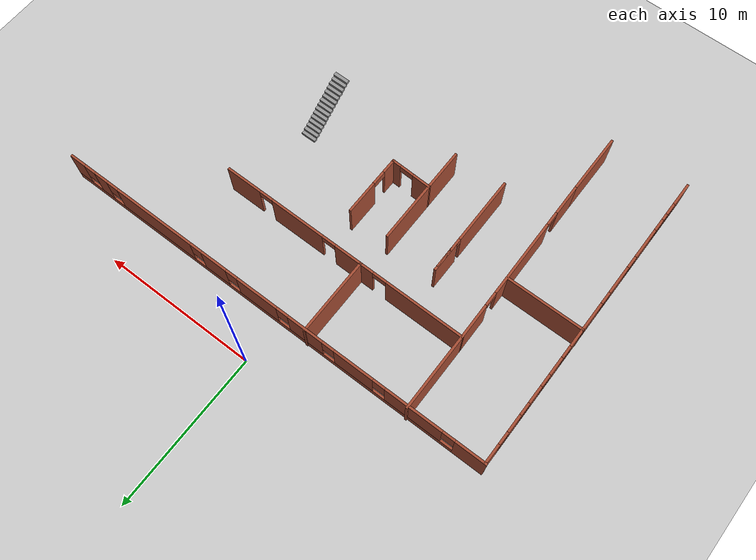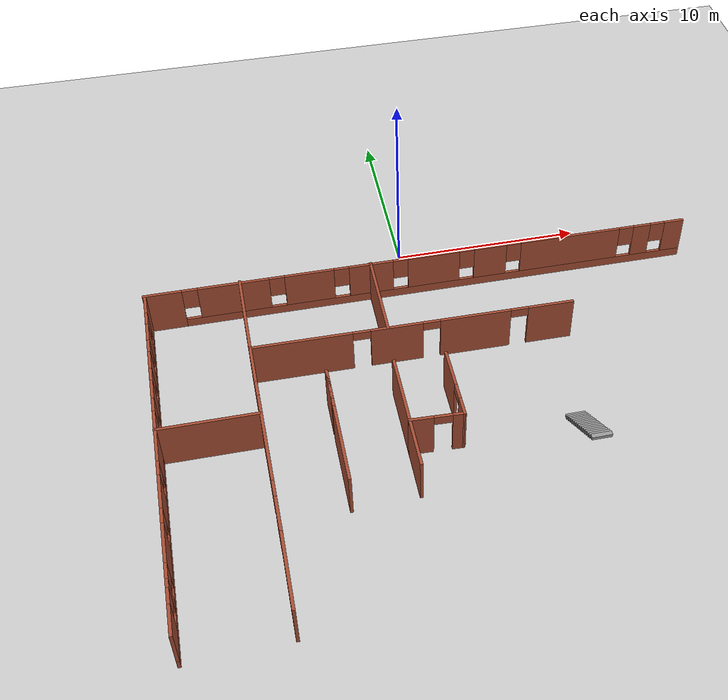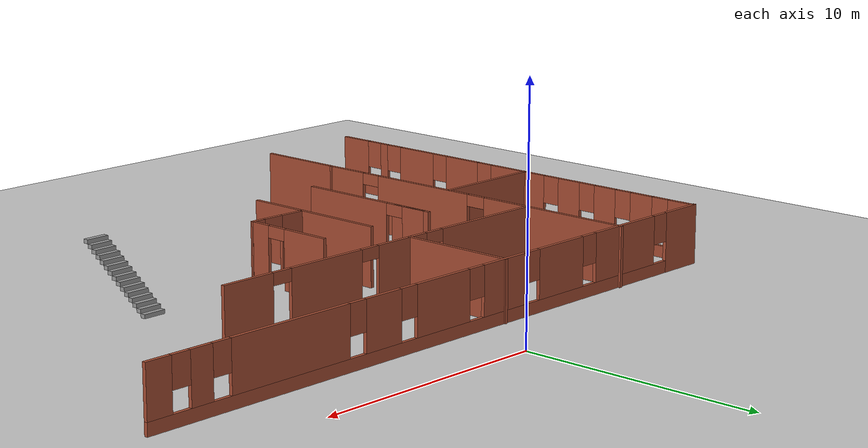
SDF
<sdf version="1.7">
 <world name="default">
  <model name="ground_plane">
   <static>1</static>
   <link name="link">
    <collision name="collision">
     <geometry><plane><normal>0 0 1</normal><size>100 100</size></plane></geometry>
     <surface>
      <contact><collide_bitmask>65535</collide_bitmask></contact>
      <friction><ode><mu>100</mu><mu2>50</mu2></ode></friction>
     </surface>
    </collision>
    <visual name="visual">
     <cast_shadows>0</cast_shadows>
     <geometry><plane><normal>0 0 1</normal><size>100 100</size></plane></geometry>
     <material>
      <script><uri>file://media/materials/scripts/gazebo.material</uri><name>Gazebo/Grey</name></script>
     </material>
    </visual>
   </link>
  </model>
  <model name="dh-hdh">
   <pose>0.666955 -11.441 0 0 -0 0</pose>
   <link name="Stairs_3">
    <visual name="Stairs_3_Visual_0">
     <pose>5.54539 -1.78177 0.083333 0 -0 0</pose>
     <geometry><box><size>1 0.233333 0.166667</size></box></geometry>
     <material>
      <script><uri>file://media/materials/scripts/gazebo.material</uri><name>Gazebo/Grey</name></script>
      <ambient>1 1 1 1</ambient>
     </material>
     <meta><layer>0</layer></meta>
    </visual>
    <collision name="Stairs_3_Collision_0">
     <geometry><box><size>1 0.233333 0.166667</size></box></geometry>
     <pose>5.54539 -1.78177 0.083333 0 -0 0</pose>
    </collision>
    <visual name="Stairs_3_Visual_1">
     <pose>5.54539 -2.0151 0.25 0 -0 0</pose>
     <geometry><box><size>1 0.233333 0.166667</size></box></geometry>
     <material>
      <script><uri>file://media/materials/scripts/gazebo.material</uri><name>Gazebo/Grey</name></script>
      <ambient>1 1 1 1</ambient>
     </material>
     <meta><layer>0</layer></meta>
    </visual>
    <collision name="Stairs_3_Collision_1">
     <geometry><box><size>1 0.233333 0.166667</size></box></geometry>
     <pose>5.54539 -2.0151 0.25 0 -0 0</pose>
    </collision>
    <visual name="Stairs_3_Visual_2">
     <pose>5.54539 -2.24844 0.416667 0 -0 0</pose>
     <geometry><box><size>1 0.233333 0.166667</size></box></geometry>
     <material>
      <script><uri>file://media/materials/scripts/gazebo.material</uri><name>Gazebo/Grey</name></script>
      <ambient>1 1 1 1</ambient>
     </material>
     <meta><layer>0</layer></meta>
    </visual>
    <collision name="Stairs_3_Collision_2">
     <geometry><box><size>1 0.233333 0.166667</size></box></geometry>
     <pose>5.54539 -2.24844 0.416667 0 -0 0</pose>
    </collision>
    <visual name="Stairs_3_Visual_3">
     <pose>5.54539 -2.48177 0.583333 0 -0 0</pose>
     <geometry><box><size>1 0.233333 0.166667</size></box></geometry>
     <material>
      <script><uri>file://media/materials/scripts/gazebo.material</uri><name>Gazebo/Grey</name></script>
      <ambient>1 1 1 1</ambient>
     </material>
     <meta><layer>0</layer></meta>
    </visual>
    <collision name="Stairs_3_Collision_3">
     <geometry><box><size>1 0.233333 0.166667</size></box></geometry>
     <pose>5.54539 -2.48177 0.583333 0 -0 0</pose>
    </collision>
    <visual name="Stairs_3_Visual_4">
     <pose>5.54539 -2.7151 0.75 0 -0 0</pose>
     <geometry><box><size>1 0.233333 0.166667</size></box></geometry>
     <material>
      <script><uri>file://media/materials/scripts/gazebo.material</uri><name>Gazebo/Grey</name></script>
      <ambient>1 1 1 1</ambient>
     </material>
     <meta><layer>0</layer></meta>
    </visual>
    <collision name="Stairs_3_Collision_4">
     <geometry><box><size>1 0.233333 0.166667</size></box></geometry>
     <pose>5.54539 -2.7151 0.75 0 -0 0</pose>
    </collision>
    <visual name="Stairs_3_Visual_5">
     <pose>5.54539 -2.94843 0.916667 0 -0 0</pose>
     <geometry><box><size>1 0.233333 0.166667</size></box></geometry>
     <material>
      <script><uri>file://media/materials/scripts/gazebo.material</uri><name>Gazebo/Grey</name></script>
      <ambient>1 1 1 1</ambient>
     </material>
     <meta><layer>0</layer></meta>
    </visual>
    <collision name="Stairs_3_Collision_5">
     <geometry><box><size>1 0.233333 0.166667</size></box></geometry>
     <pose>5.54539 -2.94843 0.916667 0 -0 0</pose>
    </collision>
    <visual name="Stairs_3_Visual_6">
     <pose>5.54539 -3.18177 1.08333 0 -0 0</pose>
     <geometry><box><size>1 0.233333 0.166667</size></box></geometry>
     <material>
      <script><uri>file://media/materials/scripts/gazebo.material</uri><name>Gazebo/Grey</name></script>
      <ambient>1 1 1 1</ambient>
     </material>
     <meta><layer>0</layer></meta>
    </visual>
    <collision name="Stairs_3_Collision_6">
     <geometry><box><size>1 0.233333 0.166667</size></box></geometry>
     <pose>5.54539 -3.18177 1.08333 0 -0 0</pose>
    </collision>
    <visual name="Stairs_3_Visual_7">
     <pose>5.54539 -3.4151 1.25 0 -0 0</pose>
     <geometry><box><size>1 0.233333 0.166667</size></box></geometry>
     <material>
      <script><uri>file://media/materials/scripts/gazebo.material</uri><name>Gazebo/Grey</name></script>
      <ambient>1 1 1 1</ambient>
     </material>
     <meta><layer>0</layer></meta>
    </visual>
    <collision name="Stairs_3_Collision_7">
     <geometry><box><size>1 0.233333 0.166667</size></box></geometry>
     <pose>5.54539 -3.4151 1.25 0 -0 0</pose>
    </collision>
    <visual name="Stairs_3_Visual_8">
     <pose>5.54539 -3.64844 1.41667 0 -0 0</pose>
     <geometry><box><size>1 0.233333 0.166667</size></box></geometry>
     <material>
      <script><uri>file://media/materials/scripts/gazebo.material</uri><name>Gazebo/Grey</name></script>
      <ambient>1 1 1 1</ambient>
     </material>
     <meta><layer>0</layer></meta>
    </visual>
    <collision name="Stairs_3_Collision_8">
     <geometry><box><size>1 0.233333 0.166667</size></box></geometry>
     <pose>5.54539 -3.64844 1.41667 0 -0 0</pose>
    </collision>
    <visual name="Stairs_3_Visual_9">
     <pose>5.54539 -3.88177 1.58333 0 -0 0</pose>
     <geometry><box><size>1 0.233333 0.166667</size></box></geometry>
     <material>
      <script><uri>file://media/materials/scripts/gazebo.material</uri><name>Gazebo/Grey</name></script>
      <ambient>1 1 1 1</ambient>
     </material>
     <meta><layer>0</layer></meta>
    </visual>
    <collision name="Stairs_3_Collision_9">
     <geometry><box><size>1 0.233333 0.166667</size></box></geometry>
     <pose>5.54539 -3.88177 1.58333 0 -0 0</pose>
    </collision>
    <visual name="Stairs_3_Visual_10">
     <pose>5.54539 -4.1151 1.75 0 -0 0</pose>
     <geometry><box><size>1 0.233333 0.166667</size></box></geometry>
     <material>
      <script><uri>file://media/materials/scripts/gazebo.material</uri><name>Gazebo/Grey</name></script>
      <ambient>1 1 1 1</ambient>
     </material>
     <meta><layer>0</layer></meta>
    </visual>
    <collision name="Stairs_3_Collision_10">
     <geometry><box><size>1 0.233333 0.166667</size></box></geometry>
     <pose>5.54539 -4.1151 1.75 0 -0 0</pose>
    </collision>
    <visual name="Stairs_3_Visual_11">
     <pose>5.54539 -4.34844 1.91667 0 -0 0</pose>
     <geometry><box><size>1 0.233333 0.166667</size></box></geometry>
     <material>
      <script><uri>file://media/materials/scripts/gazebo.material</uri><name>Gazebo/Grey</name></script>
      <ambient>1 1 1 1</ambient>
     </material>
     <meta><layer>0</layer></meta>
    </visual>
    <collision name="Stairs_3_Collision_11">
     <geometry><box><size>1 0.233333 0.166667</size></box></geometry>
     <pose>5.54539 -4.34844 1.91667 0 -0 0</pose>
    </collision>
    <visual name="Stairs_3_Visual_12">
     <pose>5.54539 -4.58177 2.08333 0 -0 0</pose>
     <geometry><box><size>1 0.233333 0.166667</size></box></geometry>
     <material>
      <script><uri>file://media/materials/scripts/gazebo.material</uri><name>Gazebo/Grey</name></script>
      <ambient>1 1 1 1</ambient>
     </material>
     <meta><layer>0</layer></meta>
    </visual>
    <collision name="Stairs_3_Collision_12">
     <geometry><box><size>1 0.233333 0.166667</size></box></geometry>
     <pose>5.54539 -4.58177 2.08333 0 -0 0</pose>
    </collision>
    <visual name="Stairs_3_Visual_13">
     <pose>5.54539 -4.8151 2.25 0 -0 0</pose>
     <geometry><box><size>1 0.233333 0.166667</size></box></geometry>
     <material>
      <script><uri>file://media/materials/scripts/gazebo.material</uri><name>Gazebo/Grey</name></script>
      <ambient>1 1 1 1</ambient>
     </material>
     <meta><layer>0</layer></meta>
    </visual>
    <collision name="Stairs_3_Collision_13">
     <geometry><box><size>1 0.233333 0.166667</size></box></geometry>
     <pose>5.54539 -4.8151 2.25 0 -0 0</pose>
    </collision>
    <visual name="Stairs_3_Visual_14">
     <pose>5.54539 -5.04843 2.41667 0 -0 0</pose>
     <geometry><box><size>1 0.233333 0.166667</size></box></geometry>
     <material>
      <script><uri>file://media/materials/scripts/gazebo.material</uri><name>Gazebo/Grey</name></script>
      <ambient>1 1 1 1</ambient>
     </material>
     <meta><layer>0</layer></meta>
    </visual>
    <collision name="Stairs_3_Collision_14">
     <geometry><box><size>1 0.233333 0.166667</size></box></geometry>
     <pose>5.54539 -5.04843 2.41667 0 -0 0</pose>
    </collision>
   </link>
   <link name="Wall_26">
    <pose>-14.5246 -1.44103 0 0 -0 -1.5708</pose>
    <visual name="Wall_26_Visual_0">
     <pose>-9.37751 0 1.25 0 -0 0</pose>
     <geometry><box><size>1.24497 0.15 2.5</size></box></geometry>
     <material>
      <script><uri>file://media/materials/scripts/gazebo.material</uri><name>Gazebo/Bricks</name></script>
      <ambient>0.466667 0.462745 0.482353 1</ambient>
     </material>
     <meta><layer>0</layer></meta>
    </visual>
    <collision name="Wall_26_Collision_0">
     <geometry><box><size>1.24497 0.15 2.5</size></box></geometry>
     <pose>-9.37751 0 1.25 0 -0 0</pose>
    </collision>
    <visual name="Wall_26_Visual_1">
     <pose>0.622486 0 0.25 0 -0 0</pose>
     <geometry><box><size>18.755 0.15 0.5</size></box></geometry>
     <material>
      <script><uri>file://media/materials/scripts/gazebo.material</uri><name>Gazebo/Bricks</name></script>
      <ambient>0.466667 0.462745 0.482353 1</ambient>
     </material>
     <meta><layer>0</layer></meta>
    </visual>
    <collision name="Wall_26_Collision_1">
     <geometry><box><size>18.755 0.15 0.5</size></box></geometry>
     <pose>0.622486 0 0.25 0 -0 0</pose>
    </collision>
    <visual name="Wall_26_Visual_2">
     <pose>-7.39044 0 1.5 0 -0 0</pose>
     <geometry><box><size>1.12917 0.15 2</size></box></geometry>
     <material>
      <script><uri>file://media/materials/scripts/gazebo.material</uri><name>Gazebo/Bricks</name></script>
      <ambient>0.466667 0.462745 0.482353 1</ambient>
     </material>
     <meta><layer>0</layer></meta>
    </visual>
    <collision name="Wall_26_Collision_2">
     <geometry><box><size>1.12917 0.15 2</size></box></geometry>
     <pose>-7.39044 0 1.5 0 -0 0</pose>
    </collision>
    <visual name="Wall_26_Visual_3">
     <pose>-5.46128 0 1.5 0 -0 0</pose>
     <geometry><box><size>1.12917 0.15 2</size></box></geometry>
     <material>
      <script><uri>file://media/materials/scripts/gazebo.material</uri><name>Gazebo/Bricks</name></script>
      <ambient>0.466667 0.462745 0.482353 1</ambient>
     </material>
     <meta><layer>0</layer></meta>
    </visual>
    <collision name="Wall_26_Collision_3">
     <geometry><box><size>1.12917 0.15 2</size></box></geometry>
     <pose>-5.46128 0 1.5 0 -0 0</pose>
    </collision>
    <visual name="Wall_26_Visual_4">
     <pose>-3.51159 0 1.5 0 -0 0</pose>
     <geometry><box><size>1.17021 0.15 2</size></box></geometry>
     <material>
      <script><uri>file://media/materials/scripts/gazebo.material</uri><name>Gazebo/Bricks</name></script>
      <ambient>0.466667 0.462745 0.482353 1</ambient>
     </material>
     <meta><layer>0</layer></meta>
    </visual>
    <collision name="Wall_26_Collision_4">
     <geometry><box><size>1.17021 0.15 2</size></box></geometry>
     <pose>-3.51159 0 1.5 0 -0 0</pose>
    </collision>
    <visual name="Wall_26_Visual_5">
     <pose>-0.603063 0 1.5 0 -0 0</pose>
     <geometry><box><size>3.04683 0.15 2</size></box></geometry>
     <material>
      <script><uri>file://media/materials/scripts/gazebo.material</uri><name>Gazebo/Bricks</name></script>
      <ambient>0.466667 0.462745 0.482353 1</ambient>
     </material>
     <meta><layer>0</layer></meta>
    </visual>
    <collision name="Wall_26_Collision_5">
     <geometry><box><size>3.04683 0.15 2</size></box></geometry>
     <pose>-0.603063 0 1.5 0 -0 0</pose>
    </collision>
    <visual name="Wall_26_Visual_6">
     <pose>2.64954 0 1.5 0 -0 0</pose>
     <geometry><box><size>1.85838 0.15 2</size></box></geometry>
     <material>
      <script><uri>file://media/materials/scripts/gazebo.material</uri><name>Gazebo/Bricks</name></script>
      <ambient>0.466667 0.462745 0.482353 1</ambient>
     </material>
     <meta><layer>0</layer></meta>
    </visual>
    <collision name="Wall_26_Collision_6">
     <geometry><box><size>1.85838 0.15 2</size></box></geometry>
     <pose>2.64954 0 1.5 0 -0 0</pose>
    </collision>
    <visual name="Wall_26_Visual_7">
     <pose>5.40287 0 1.5 0 -0 0</pose>
     <geometry><box><size>2.04827 0.15 2</size></box></geometry>
     <material>
      <script><uri>file://media/materials/scripts/gazebo.material</uri><name>Gazebo/Bricks</name></script>
      <ambient>0.466667 0.462745 0.482353 1</ambient>
     </material>
     <meta><layer>0</layer></meta>
    </visual>
    <collision name="Wall_26_Collision_7">
     <geometry><box><size>2.04827 0.15 2</size></box></geometry>
     <pose>5.40287 0 1.5 0 -0 0</pose>
    </collision>
    <visual name="Wall_26_Visual_8">
     <pose>7.44412 0 1.5 0 -0 0</pose>
     <geometry><box><size>0.434249 0.15 2</size></box></geometry>
     <material>
      <script><uri>file://media/materials/scripts/gazebo.material</uri><name>Gazebo/Bricks</name></script>
      <ambient>0.466667 0.462745 0.482353 1</ambient>
     </material>
     <meta><layer>0</layer></meta>
    </visual>
    <collision name="Wall_26_Collision_8">
     <geometry><box><size>0.434249 0.15 2</size></box></geometry>
     <pose>7.44412 0 1.5 0 -0 0</pose>
    </collision>
    <visual name="Wall_26_Visual_9">
     <pose>9.23062 0 1.5 0 -0 0</pose>
     <geometry><box><size>1.53875 0.15 2</size></box></geometry>
     <material>
      <script><uri>file://media/materials/scripts/gazebo.material</uri><name>Gazebo/Bricks</name></script>
      <ambient>0.466667 0.462745 0.482353 1</ambient>
     </material>
     <meta><layer>0</layer></meta>
    </visual>
    <collision name="Wall_26_Collision_9">
     <geometry><box><size>1.53875 0.15 2</size></box></geometry>
     <pose>9.23062 0 1.5 0 -0 0</pose>
    </collision>
    <visual name="Wall_26_Visual_10">
     <pose>-8.35503 0 1.9 0 -0 0</pose>
     <geometry><box><size>0.8 0.15 1.2</size></box></geometry>
     <material>
      <script><uri>file://media/materials/scripts/gazebo.material</uri><name>Gazebo/Bricks</name></script>
      <ambient>0.466667 0.462745 0.482353 1</ambient>
     </material>
     <meta><layer>0</layer></meta>
    </visual>
    <collision name="Wall_26_Collision_10">
     <geometry><box><size>0.8 0.15 1.2</size></box></geometry>
     <pose>-8.35503 0 1.9 0 -0 0</pose>
    </collision>
    <visual name="Wall_26_Visual_11">
     <pose>-6.42586 0 1.9 0 -0 0</pose>
     <geometry><box><size>0.8 0.15 1.2</size></box></geometry>
     <material>
      <script><uri>file://media/materials/scripts/gazebo.material</uri><name>Gazebo/Bricks</name></script>
      <ambient>0.466667 0.462745 0.482353 1</ambient>
     </material>
     <meta><layer>0</layer></meta>
    </visual>
    <collision name="Wall_26_Collision_11">
     <geometry><box><size>0.8 0.15 1.2</size></box></geometry>
     <pose>-6.42586 0 1.9 0 -0 0</pose>
    </collision>
    <visual name="Wall_26_Visual_12">
     <pose>-4.49669 0 1.9 0 -0 0</pose>
     <geometry><box><size>0.8 0.15 1.2</size></box></geometry>
     <material>
      <script><uri>file://media/materials/scripts/gazebo.material</uri><name>Gazebo/Bricks</name></script>
      <ambient>0.466667 0.462745 0.482353 1</ambient>
     </material>
     <meta><layer>0</layer></meta>
    </visual>
    <collision name="Wall_26_Collision_12">
     <geometry><box><size>0.8 0.15 1.2</size></box></geometry>
     <pose>-4.49669 0 1.9 0 -0 0</pose>
    </collision>
    <visual name="Wall_26_Visual_13">
     <pose>-2.52648 0 1.9 0 -0 0</pose>
     <geometry><box><size>0.8 0.15 1.2</size></box></geometry>
     <material>
      <script><uri>file://media/materials/scripts/gazebo.material</uri><name>Gazebo/Bricks</name></script>
      <ambient>0.466667 0.462745 0.482353 1</ambient>
     </material>
     <meta><layer>0</layer></meta>
    </visual>
    <collision name="Wall_26_Collision_13">
     <geometry><box><size>0.8 0.15 1.2</size></box></geometry>
     <pose>-2.52648 0 1.9 0 -0 0</pose>
    </collision>
    <visual name="Wall_26_Visual_14">
     <pose>1.32035 0 1.9 0 -0 0</pose>
     <geometry><box><size>0.8 0.15 1.2</size></box></geometry>
     <material>
      <script><uri>file://media/materials/scripts/gazebo.material</uri><name>Gazebo/Bricks</name></script>
      <ambient>0.466667 0.462745 0.482353 1</ambient>
     </material>
     <meta><layer>0</layer></meta>
    </visual>
    <collision name="Wall_26_Collision_14">
     <geometry><box><size>0.8 0.15 1.2</size></box></geometry>
     <pose>1.32035 0 1.9 0 -0 0</pose>
    </collision>
    <visual name="Wall_26_Visual_15">
     <pose>3.97873 0 1.9 0 -0 0</pose>
     <geometry><box><size>0.8 0.15 1.2</size></box></geometry>
     <material>
      <script><uri>file://media/materials/scripts/gazebo.material</uri><name>Gazebo/Bricks</name></script>
      <ambient>0.466667 0.462745 0.482353 1</ambient>
     </material>
     <meta><layer>0</layer></meta>
    </visual>
    <collision name="Wall_26_Collision_15">
     <geometry><box><size>0.8 0.15 1.2</size></box></geometry>
     <pose>3.97873 0 1.9 0 -0 0</pose>
    </collision>
    <visual name="Wall_26_Visual_16">
     <pose>6.827 0 1.9 0 -0 0</pose>
     <geometry><box><size>0.8 0.15 1.2</size></box></geometry>
     <material>
      <script><uri>file://media/materials/scripts/gazebo.material</uri><name>Gazebo/Bricks</name></script>
      <ambient>0.466667 0.462745 0.482353 1</ambient>
     </material>
     <meta><layer>0</layer></meta>
    </visual>
    <collision name="Wall_26_Collision_16">
     <geometry><box><size>0.8 0.15 1.2</size></box></geometry>
     <pose>6.827 0 1.9 0 -0 0</pose>
    </collision>
    <visual name="Wall_26_Visual_17">
     <pose>8.06125 0 1.9 0 -0 0</pose>
     <geometry><box><size>0.8 0.15 1.2</size></box></geometry>
     <material>
      <script><uri>file://media/materials/scripts/gazebo.material</uri><name>Gazebo/Bricks</name></script>
      <ambient>0.466667 0.462745 0.482353 1</ambient>
     </material>
     <meta><layer>0</layer></meta>
    </visual>
    <collision name="Wall_26_Collision_17">
     <geometry><box><size>0.8 0.15 1.2</size></box></geometry>
     <pose>8.06125 0 1.9 0 -0 0</pose>
    </collision>
   </link>
   <link name="Wall_31">
    <pose>-9.60462 -1.78389 0 0 -0 -1.56255</pose>
    <visual name="Wall_31_Visual_0">
     <pose>-4.4735 0 1.25 0 -0 0</pose>
     <geometry><box><size>2.33397 0.15 2.5</size></box></geometry>
     <material>
      <script><uri>file://media/materials/scripts/gazebo.material</uri><name>Gazebo/Bricks</name></script>
      <ambient>0.996078 0.47451 0.0196078 1</ambient>
     </material>
     <meta><layer>0</layer></meta>
    </visual>
    <collision name="Wall_31_Collision_0">
     <geometry><box><size>2.33397 0.15 2.5</size></box></geometry>
     <pose>-4.4735 0 1.25 0 -0 0</pose>
    </collision>
    <visual name="Wall_31_Visual_1">
     <pose>0.159515 0 1.25 0 -0 0</pose>
     <geometry><box><size>5.13206 0.15 2.5</size></box></geometry>
     <material>
      <script><uri>file://media/materials/scripts/gazebo.material</uri><name>Gazebo/Bricks</name></script>
      <ambient>0.996078 0.47451 0.0196078 1</ambient>
     </material>
     <meta><layer>0</layer></meta>
    </visual>
    <collision name="Wall_31_Collision_1">
     <geometry><box><size>5.13206 0.15 2.5</size></box></geometry>
     <pose>0.159515 0 1.25 0 -0 0</pose>
    </collision>
    <visual name="Wall_31_Visual_2">
     <pose>4.63302 0 1.25 0 -0 0</pose>
     <geometry><box><size>2.01494 0.15 2.5</size></box></geometry>
     <material>
      <script><uri>file://media/materials/scripts/gazebo.material</uri><name>Gazebo/Bricks</name></script>
      <ambient>0.996078 0.47451 0.0196078 1</ambient>
     </material>
     <meta><layer>0</layer></meta>
    </visual>
    <collision name="Wall_31_Collision_2">
     <geometry><box><size>2.01494 0.15 2.5</size></box></geometry>
     <pose>4.63302 0 1.25 0 -0 0</pose>
    </collision>
    <visual name="Wall_31_Visual_3">
     <pose>-2.85652 0 2.25 0 -0 0</pose>
     <geometry><box><size>0.9 0.15 0.5</size></box></geometry>
     <material>
      <script><uri>file://media/materials/scripts/gazebo.material</uri><name>Gazebo/Bricks</name></script>
      <ambient>0.996078 0.47451 0.0196078 1</ambient>
     </material>
     <meta><layer>0</layer></meta>
    </visual>
    <collision name="Wall_31_Collision_3">
     <geometry><box><size>0.9 0.15 0.5</size></box></geometry>
     <pose>-2.85652 0 2.25 0 -0 0</pose>
    </collision>
    <visual name="Wall_31_Visual_4">
     <pose>3.17555 0 2.25 0 -0 0</pose>
     <geometry><box><size>0.9 0.15 0.5</size></box></geometry>
     <material>
      <script><uri>file://media/materials/scripts/gazebo.material</uri><name>Gazebo/Bricks</name></script>
      <ambient>0.996078 0.47451 0.0196078 1</ambient>
     </material>
     <meta><layer>0</layer></meta>
    </visual>
    <collision name="Wall_31_Collision_4">
     <geometry><box><size>0.9 0.15 0.5</size></box></geometry>
     <pose>3.17555 0 2.25 0 -0 0</pose>
    </collision>
   </link>
   <link name="Wall_37">
    <pose>-0.025987 8.54418 0 0 -0 0</pose>
    <visual name="Wall_37_Visual_0">
     <pose>-13.6256 0 1.25 0 -0 0</pose>
     <geometry><box><size>1.9989 0.15 2.5</size></box></geometry>
     <material>
      <script><uri>file://media/materials/scripts/gazebo.material</uri><name>Gazebo/Bricks</name></script>
      <ambient>0.466667 0.462745 0.482353 1</ambient>
     </material>
     <meta><layer>0</layer></meta>
    </visual>
    <collision name="Wall_37_Collision_0">
     <geometry><box><size>1.9989 0.15 2.5</size></box></geometry>
     <pose>-13.6256 0 1.25 0 -0 0</pose>
    </collision>
    <visual name="Wall_37_Visual_1">
     <pose>0.999449 0 0.25 0 -0 0</pose>
     <geometry><box><size>27.2511 0.15 0.5</size></box></geometry>
     <material>
      <script><uri>file://media/materials/scripts/gazebo.material</uri><name>Gazebo/Bricks</name></script>
      <ambient>0.466667 0.462745 0.482353 1</ambient>
     </material>
     <meta><layer>0</layer></meta>
    </visual>
    <collision name="Wall_37_Collision_1">
     <geometry><box><size>27.2511 0.15 0.5</size></box></geometry>
     <pose>0.999449 0 0.25 0 -0 0</pose>
    </collision>
    <visual name="Wall_37_Visual_2">
     <pose>-9.96856 0 1.5 0 -0 0</pose>
     <geometry><box><size>3.71507 0.15 2</size></box></geometry>
     <material>
      <script><uri>file://media/materials/scripts/gazebo.material</uri><name>Gazebo/Bricks</name></script>
      <ambient>0.466667 0.462745 0.482353 1</ambient>
     </material>
     <meta><layer>0</layer></meta>
    </visual>
    <collision name="Wall_37_Collision_2">
     <geometry><box><size>3.71507 0.15 2</size></box></geometry>
     <pose>-9.96856 0 1.5 0 -0 0</pose>
    </collision>
    <visual name="Wall_37_Visual_3">
     <pose>-6.00761 0 1.5 0 -0 0</pose>
     <geometry><box><size>2.60683 0.15 2</size></box></geometry>
     <material>
      <script><uri>file://media/materials/scripts/gazebo.material</uri><name>Gazebo/Bricks</name></script>
      <ambient>0.466667 0.462745 0.482353 1</ambient>
     </material>
     <meta><layer>0</layer></meta>
    </visual>
    <collision name="Wall_37_Collision_3">
     <geometry><box><size>2.60683 0.15 2</size></box></geometry>
     <pose>-6.00761 0 1.5 0 -0 0</pose>
    </collision>
    <visual name="Wall_37_Visual_4">
     <pose>-2.72392 0 1.5 0 -0 0</pose>
     <geometry><box><size>2.36055 0.15 2</size></box></geometry>
     <material>
      <script><uri>file://media/materials/scripts/gazebo.material</uri><name>Gazebo/Bricks</name></script>
      <ambient>0.466667 0.462745 0.482353 1</ambient>
     </material>
     <meta><layer>0</layer></meta>
    </visual>
    <collision name="Wall_37_Collision_4">
     <geometry><box><size>2.36055 0.15 2</size></box></geometry>
     <pose>-2.72392 0 1.5 0 -0 0</pose>
    </collision>
    <visual name="Wall_37_Visual_5">
     <pose>0.662383 0 1.5 0 -0 0</pose>
     <geometry><box><size>2.81206 0.15 2</size></box></geometry>
     <material>
      <script><uri>file://media/materials/scripts/gazebo.material</uri><name>Gazebo/Bricks</name></script>
      <ambient>0.466667 0.462745 0.482353 1</ambient>
     </material>
     <meta><layer>0</layer></meta>
    </visual>
    <collision name="Wall_37_Collision_5">
     <geometry><box><size>2.81206 0.15 2</size></box></geometry>
     <pose>0.662383 0 1.5 0 -0 0</pose>
    </collision>
    <visual name="Wall_37_Visual_6">
     <pose>3.76137 0 1.5 0 -0 0</pose>
     <geometry><box><size>1.78591 0.15 2</size></box></geometry>
     <material>
      <script><uri>file://media/materials/scripts/gazebo.material</uri><name>Gazebo/Bricks</name></script>
      <ambient>0.466667 0.462745 0.482353 1</ambient>
     </material>
     <meta><layer>0</layer></meta>
    </visual>
    <collision name="Wall_37_Collision_6">
     <geometry><box><size>1.78591 0.15 2</size></box></geometry>
     <pose>3.76137 0 1.5 0 -0 0</pose>
    </collision>
    <visual name="Wall_37_Visual_7">
     <pose>8.21487 0 1.5 0 -0 0</pose>
     <geometry><box><size>5.5211 0.15 2</size></box></geometry>
     <material>
      <script><uri>file://media/materials/scripts/gazebo.material</uri><name>Gazebo/Bricks</name></script>
      <ambient>0.466667 0.462745 0.482353 1</ambient>
     </material>
     <meta><layer>0</layer></meta>
    </visual>
    <collision name="Wall_37_Collision_7">
     <geometry><box><size>5.5211 0.15 2</size></box></geometry>
     <pose>8.21487 0 1.5 0 -0 0</pose>
    </collision>
    <visual name="Wall_37_Visual_8">
     <pose>12.2579 0 1.5 0 -0 0</pose>
     <geometry><box><size>0.964984 0.15 2</size></box></geometry>
     <material>
      <script><uri>file://media/materials/scripts/gazebo.material</uri><name>Gazebo/Bricks</name></script>
      <ambient>0.466667 0.462745 0.482353 1</ambient>
     </material>
     <meta><layer>0</layer></meta>
    </visual>
    <collision name="Wall_37_Collision_8">
     <geometry><box><size>0.964984 0.15 2</size></box></geometry>
     <pose>12.2579 0 1.5 0 -0 0</pose>
    </collision>
    <visual name="Wall_37_Visual_9">
     <pose>14.0827 0 1.5 0 -0 0</pose>
     <geometry><box><size>1.08459 0.15 2</size></box></geometry>
     <material>
      <script><uri>file://media/materials/scripts/gazebo.material</uri><name>Gazebo/Bricks</name></script>
      <ambient>0.466667 0.462745 0.482353 1</ambient>
     </material>
     <meta><layer>0</layer></meta>
    </visual>
    <collision name="Wall_37_Collision_9">
     <geometry><box><size>1.08459 0.15 2</size></box></geometry>
     <pose>14.0827 0 1.5 0 -0 0</pose>
    </collision>
    <visual name="Wall_37_Visual_10">
     <pose>-12.2261 0 1.9 0 -0 0</pose>
     <geometry><box><size>0.8 0.15 1.2</size></box></geometry>
     <material>
      <script><uri>file://media/materials/scripts/gazebo.material</uri><name>Gazebo/Bricks</name></script>
      <ambient>0.466667 0.462745 0.482353 1</ambient>
     </material>
     <meta><layer>0</layer></meta>
    </visual>
    <collision name="Wall_37_Collision_10">
     <geometry><box><size>0.8 0.15 1.2</size></box></geometry>
     <pose>-12.2261 0 1.9 0 -0 0</pose>
    </collision>
    <visual name="Wall_37_Visual_11">
     <pose>-7.71103 0 1.9 0 -0 0</pose>
     <geometry><box><size>0.8 0.15 1.2</size></box></geometry>
     <material>
      <script><uri>file://media/materials/scripts/gazebo.material</uri><name>Gazebo/Bricks</name></script>
      <ambient>0.466667 0.462745 0.482353 1</ambient>
     </material>
     <meta><layer>0</layer></meta>
    </visual>
    <collision name="Wall_37_Collision_11">
     <geometry><box><size>0.8 0.15 1.2</size></box></geometry>
     <pose>-7.71103 0 1.9 0 -0 0</pose>
    </collision>
    <visual name="Wall_37_Visual_12">
     <pose>-4.3042 0 1.9 0 -0 0</pose>
     <geometry><box><size>0.8 0.15 1.2</size></box></geometry>
     <material>
      <script><uri>file://media/materials/scripts/gazebo.material</uri><name>Gazebo/Bricks</name></script>
      <ambient>0.466667 0.462745 0.482353 1</ambient>
     </material>
     <meta><layer>0</layer></meta>
    </visual>
    <collision name="Wall_37_Collision_12">
     <geometry><box><size>0.8 0.15 1.2</size></box></geometry>
     <pose>-4.3042 0 1.9 0 -0 0</pose>
    </collision>
    <visual name="Wall_37_Visual_13">
     <pose>-1.14365 0 1.9 0 -0 0</pose>
     <geometry><box><size>0.8 0.15 1.2</size></box></geometry>
     <material>
      <script><uri>file://media/materials/scripts/gazebo.material</uri><name>Gazebo/Bricks</name></script>
      <ambient>0.466667 0.462745 0.482353 1</ambient>
     </material>
     <meta><layer>0</layer></meta>
    </visual>
    <collision name="Wall_37_Collision_13">
     <geometry><box><size>0.8 0.15 1.2</size></box></geometry>
     <pose>-1.14365 0 1.9 0 -0 0</pose>
    </collision>
    <visual name="Wall_37_Visual_14">
     <pose>2.46841 0 1.9 0 -0 0</pose>
     <geometry><box><size>0.8 0.15 1.2</size></box></geometry>
     <material>
      <script><uri>file://media/materials/scripts/gazebo.material</uri><name>Gazebo/Bricks</name></script>
      <ambient>0.466667 0.462745 0.482353 1</ambient>
     </material>
     <meta><layer>0</layer></meta>
    </visual>
    <collision name="Wall_37_Collision_14">
     <geometry><box><size>0.8 0.15 1.2</size></box></geometry>
     <pose>2.46841 0 1.9 0 -0 0</pose>
    </collision>
    <visual name="Wall_37_Visual_15">
     <pose>5.05432 0 1.9 0 -0 0</pose>
     <geometry><box><size>0.8 0.15 1.2</size></box></geometry>
     <material>
      <script><uri>file://media/materials/scripts/gazebo.material</uri><name>Gazebo/Bricks</name></script>
      <ambient>0.466667 0.462745 0.482353 1</ambient>
     </material>
     <meta><layer>0</layer></meta>
    </visual>
    <collision name="Wall_37_Collision_15">
     <geometry><box><size>0.8 0.15 1.2</size></box></geometry>
     <pose>5.05432 0 1.9 0 -0 0</pose>
    </collision>
    <visual name="Wall_37_Visual_16">
     <pose>11.3754 0 1.9 0 -0 0</pose>
     <geometry><box><size>0.8 0.15 1.2</size></box></geometry>
     <material>
      <script><uri>file://media/materials/scripts/gazebo.material</uri><name>Gazebo/Bricks</name></script>
      <ambient>0.466667 0.462745 0.482353 1</ambient>
     </material>
     <meta><layer>0</layer></meta>
    </visual>
    <collision name="Wall_37_Collision_16">
     <geometry><box><size>0.8 0.15 1.2</size></box></geometry>
     <pose>11.3754 0 1.9 0 -0 0</pose>
    </collision>
    <visual name="Wall_37_Visual_17">
     <pose>13.1404 0 1.9 0 -0 0</pose>
     <geometry><box><size>0.8 0.15 1.2</size></box></geometry>
     <material>
      <script><uri>file://media/materials/scripts/gazebo.material</uri><name>Gazebo/Bricks</name></script>
      <ambient>0.466667 0.462745 0.482353 1</ambient>
     </material>
     <meta><layer>0</layer></meta>
    </visual>
    <collision name="Wall_37_Collision_17">
     <geometry><box><size>0.8 0.15 1.2</size></box></geometry>
     <pose>13.1404 0 1.9 0 -0 0</pose>
    </collision>
   </link>
   <link name="Wall_43">
    <pose>-1.42654 3.72817 0 0 -0 3.13512</pose>
    <visual name="Wall_43_Visual_0">
     <pose>-7.10018 0 1.25 0 -0 0</pose>
     <geometry><box><size>2.3979 0.15 2.5</size></box></geometry>
     <material>
      <script><uri>file://media/materials/scripts/gazebo.material</uri><name>Gazebo/Bricks</name></script>
      <ambient>0.996078 0.47451 0.0196078 1</ambient>
     </material>
     <meta><layer>0</layer></meta>
    </visual>
    <collision name="Wall_43_Collision_0">
     <geometry><box><size>2.3979 0.15 2.5</size></box></geometry>
     <pose>-7.10018 0 1.25 0 -0 0</pose>
    </collision>
    <visual name="Wall_43_Visual_1">
     <pose>-3.17335 0 1.25 0 -0 0</pose>
     <geometry><box><size>3.65576 0.15 2.5</size></box></geometry>
     <material>
      <script><uri>file://media/materials/scripts/gazebo.material</uri><name>Gazebo/Bricks</name></script>
      <ambient>0.996078 0.47451 0.0196078 1</ambient>
     </material>
     <meta><layer>0</layer></meta>
    </visual>
    <collision name="Wall_43_Collision_1">
     <geometry><box><size>3.65576 0.15 2.5</size></box></geometry>
     <pose>-3.17335 0 1.25 0 -0 0</pose>
    </collision>
    <visual name="Wall_43_Visual_2">
     <pose>0.887997 0 1.25 0 -0 0</pose>
     <geometry><box><size>2.66695 0.15 2.5</size></box></geometry>
     <material>
      <script><uri>file://media/materials/scripts/gazebo.material</uri><name>Gazebo/Bricks</name></script>
      <ambient>0.996078 0.47451 0.0196078 1</ambient>
     </material>
     <meta><layer>0</layer></meta>
    </visual>
    <collision name="Wall_43_Collision_2">
     <geometry><box><size>2.66695 0.15 2.5</size></box></geometry>
     <pose>0.887997 0 1.25 0 -0 0</pose>
    </collision>
    <visual name="Wall_43_Visual_3">
     <pose>5.7103 0 1.25 0 -0 0</pose>
     <geometry><box><size>5.17766 0.15 2.5</size></box></geometry>
     <material>
      <script><uri>file://media/materials/scripts/gazebo.material</uri><name>Gazebo/Bricks</name></script>
      <ambient>0.996078 0.47451 0.0196078 1</ambient>
     </material>
     <meta><layer>0</layer></meta>
    </visual>
    <collision name="Wall_43_Collision_3">
     <geometry><box><size>5.17766 0.15 2.5</size></box></geometry>
     <pose>5.7103 0 1.25 0 -0 0</pose>
    </collision>
    <visual name="Wall_43_Visual_4">
     <pose>-5.45123 0 2.25 0 -0 0</pose>
     <geometry><box><size>0.9 0.15 0.5</size></box></geometry>
     <material>
      <script><uri>file://media/materials/scripts/gazebo.material</uri><name>Gazebo/Bricks</name></script>
      <ambient>0.996078 0.47451 0.0196078 1</ambient>
     </material>
     <meta><layer>0</layer></meta>
    </visual>
    <collision name="Wall_43_Collision_4">
     <geometry><box><size>0.9 0.15 0.5</size></box></geometry>
     <pose>-5.45123 0 2.25 0 -0 0</pose>
    </collision>
    <visual name="Wall_43_Visual_5">
     <pose>-0.895477 0 2.25 0 -0 0</pose>
     <geometry><box><size>0.9 0.15 0.5</size></box></geometry>
     <material>
      <script><uri>file://media/materials/scripts/gazebo.material</uri><name>Gazebo/Bricks</name></script>
      <ambient>0.996078 0.47451 0.0196078 1</ambient>
     </material>
     <meta><layer>0</layer></meta>
    </visual>
    <collision name="Wall_43_Collision_5">
     <geometry><box><size>0.9 0.15 0.5</size></box></geometry>
     <pose>-0.895477 0 2.25 0 -0 0</pose>
    </collision>
    <visual name="Wall_43_Visual_6">
     <pose>2.67147 0 2.25 0 -0 0</pose>
     <geometry><box><size>0.9 0.15 0.5</size></box></geometry>
     <material>
      <script><uri>file://media/materials/scripts/gazebo.material</uri><name>Gazebo/Bricks</name></script>
      <ambient>0.996078 0.47451 0.0196078 1</ambient>
     </material>
     <meta><layer>0</layer></meta>
    </visual>
    <collision name="Wall_43_Collision_6">
     <geometry><box><size>0.9 0.15 0.5</size></box></geometry>
     <pose>2.67147 0 2.25 0 -0 0</pose>
    </collision>
   </link>
   <link name="Wall_45">
    <pose>-6.21798 -1.94379 0 0 -0 -1.5708</pose>
    <visual name="Wall_45_Visual_0">
     <pose>-2.65819 0 1.25 0 -0 0</pose>
     <geometry><box><size>1.18362 0.15 2.5</size></box></geometry>
     <material>
      <script><uri>file://media/materials/scripts/gazebo.material</uri><name>Gazebo/Bricks</name></script>
      <ambient>0.996078 0.47451 0.0196078 1</ambient>
     </material>
     <meta><layer>0</layer></meta>
    </visual>
    <collision name="Wall_45_Collision_0">
     <geometry><box><size>1.18362 0.15 2.5</size></box></geometry>
     <pose>-2.65819 0 1.25 0 -0 0</pose>
    </collision>
    <visual name="Wall_45_Visual_1">
     <pose>1.04181 0 1.25 0 -0 0</pose>
     <geometry><box><size>4.41638 0.15 2.5</size></box></geometry>
     <material>
      <script><uri>file://media/materials/scripts/gazebo.material</uri><name>Gazebo/Bricks</name></script>
      <ambient>0.996078 0.47451 0.0196078 1</ambient>
     </material>
     <meta><layer>0</layer></meta>
    </visual>
    <collision name="Wall_45_Collision_1">
     <geometry><box><size>4.41638 0.15 2.5</size></box></geometry>
     <pose>1.04181 0 1.25 0 -0 0</pose>
    </collision>
    <visual name="Wall_45_Visual_2">
     <pose>-1.61638 0 2.25 0 -0 0</pose>
     <geometry><box><size>0.9 0.15 0.5</size></box></geometry>
     <material>
      <script><uri>file://media/materials/scripts/gazebo.material</uri><name>Gazebo/Bricks</name></script>
      <ambient>0.996078 0.47451 0.0196078 1</ambient>
     </material>
     <meta><layer>0</layer></meta>
    </visual>
    <collision name="Wall_45_Collision_2">
     <geometry><box><size>0.9 0.15 0.5</size></box></geometry>
     <pose>-1.61638 0 2.25 0 -0 0</pose>
    </collision>
   </link>
   <link name="Wall_49">
    <collision name="Wall_49_Collision">
     <geometry><box><size>2 0.15 2.5</size></box></geometry>
     <pose>0 0 1.25 0 -0 0</pose>
    </collision>
    <visual name="Wall_49_Visual">
     <pose>0 0 1.25 0 -0 0</pose>
     <geometry><box><size>2 0.15 2.5</size></box></geometry>
     <material>
      <script><uri>file://media/materials/scripts/gazebo.material</uri><name>Gazebo/Bricks</name></script>
      <ambient>0.996078 0.47451 0.0196078 1</ambient>
     </material>
     <meta><layer>0</layer></meta>
    </visual>
    <pose>-6.21798 0.55621 0 0 -0 -1.5708</pose>
   </link>
   <link name="Wall_59">
    <collision name="Wall_59_Collision">
     <geometry><box><size>5 0.15 2.5</size></box></geometry>
     <pose>0 0 1.25 0 -0 0</pose>
    </collision>
    <visual name="Wall_59_Visual">
     <pose>0 0 1.25 0 -0 0</pose>
     <geometry><box><size>5 0.15 2.5</size></box></geometry>
     <material>
      <script><uri>file://media/materials/scripts/gazebo.material</uri><name>Gazebo/Bricks</name></script>
      <ambient>0.996078 0.47451 0.0196078 1</ambient>
     </material>
     <meta><layer>0</layer></meta>
    </visual>
    <pose>-2.76102 6.17012 0 0 -0 -1.5708</pose>
   </link>
   <link name="Wall_62">
    <collision name="Wall_62_Collision">
     <geometry><box><size>5 0.15 2.5</size></box></geometry>
     <pose>0 0 1.25 0 -0 0</pose>
    </collision>
    <visual name="Wall_62_Visual">
     <pose>0 0 1.25 0 -0 0</pose>
     <geometry><box><size>5 0.15 2.5</size></box></geometry>
     <material>
      <script><uri>file://media/materials/scripts/gazebo.material</uri><name>Gazebo/Bricks</name></script>
      <ambient>1 1 1 1</ambient>
     </material>
     <meta><layer>0</layer></meta>
    </visual>
    <pose>-9.6505 6.20641 0 0 -0 1.5708</pose>
   </link>
   <link name="Wall_64">
    <collision name="Wall_64_Collision">
     <geometry><box><size>5 0.15 2.5</size></box></geometry>
     <pose>0 0 1.25 0 -0 0</pose>
    </collision>
    <visual name="Wall_64_Visual">
     <pose>0 0 1.25 0 -0 0</pose>
     <geometry><box><size>5 0.15 2.5</size></box></geometry>
     <material>
      <script><uri>file://media/materials/scripts/gazebo.material</uri><name>Gazebo/Bricks</name></script>
      <ambient>0.996078 0.47451 0.0196078 1</ambient>
     </material>
     <meta><layer>0</layer></meta>
    </visual>
    <pose>-12.1135 -0.486286 0 0 -0 3.14159</pose>
   </link>
   <link name="Wall_66">
    <collision name="Wall_66_Collision">
     <geometry><box><size>4 0.15 2.5</size></box></geometry>
     <pose>0 0 1.25 0 -0 0</pose>
    </collision>
    <visual name="Wall_66_Visual">
     <pose>0 0 1.25 0 -0 0</pose>
     <geometry><box><size>4 0.15 2.5</size></box></geometry>
     <material>
      <script><uri>file://media/materials/scripts/gazebo.material</uri><name>Gazebo/Bricks</name></script>
      <ambient>1 1 1 1</ambient>
     </material>
     <meta><layer>0</layer></meta>
    </visual>
    <pose>-9.55873 -9.27418 0 0 -0 -1.5708</pose>
   </link>
   <link name="Wall_72">
    <pose>-0.310583 -0.495615 0 0 -0 -1.5708</pose>
    <visual name="Wall_72_Visual_0">
     <pose>-0.95509 0 1.25 0 -0 0</pose>
     <geometry><box><size>2.19629 0.15 2.5</size></box></geometry>
     <material>
      <script><uri>file://media/materials/scripts/gazebo.material</uri><name>Gazebo/Bricks</name></script>
      <ambient>1 1 1 1</ambient>
     </material>
     <meta><layer>0</layer></meta>
    </visual>
    <collision name="Wall_72_Collision_0">
     <geometry><box><size>2.19629 0.15 2.5</size></box></geometry>
     <pose>-0.95509 0 1.25 0 -0 0</pose>
    </collision>
    <visual name="Wall_72_Visual_1">
     <pose>1.54815 0 1.25 0 -0 0</pose>
     <geometry><box><size>1.01018 0.15 2.5</size></box></geometry>
     <material>
      <script><uri>file://media/materials/scripts/gazebo.material</uri><name>Gazebo/Bricks</name></script>
      <ambient>1 1 1 1</ambient>
     </material>
     <meta><layer>0</layer></meta>
    </visual>
    <collision name="Wall_72_Collision_1">
     <geometry><box><size>1.01018 0.15 2.5</size></box></geometry>
     <pose>1.54815 0 1.25 0 -0 0</pose>
    </collision>
    <visual name="Wall_72_Visual_2">
     <pose>0.593057 0 2.25 0 -0 0</pose>
     <geometry><box><size>0.9 0.15 0.5</size></box></geometry>
     <material>
      <script><uri>file://media/materials/scripts/gazebo.material</uri><name>Gazebo/Bricks</name></script>
      <ambient>1 1 1 1</ambient>
     </material>
     <meta><layer>0</layer></meta>
    </visual>
    <collision name="Wall_72_Collision_2">
     <geometry><box><size>0.9 0.15 0.5</size></box></geometry>
     <pose>0.593057 0 2.25 0 -0 0</pose>
    </collision>
   </link>
   <link name="Wall_73">
    <pose>-1.61058 -2.42062 0 0 -0 3.10066</pose>
    <visual name="Wall_73_Visual_0">
     <pose>-1.05742 0 1.25 0 -0 0</pose>
     <geometry><box><size>0.637334 0.15 2.5</size></box></geometry>
     <material>
      <script><uri>file://media/materials/scripts/gazebo.material</uri><name>Gazebo/Bricks</name></script>
      <ambient>0.996078 0.47451 0.0196078 1</ambient>
     </material>
     <meta><layer>0</layer></meta>
    </visual>
    <collision name="Wall_73_Collision_0">
     <geometry><box><size>0.637334 0.15 2.5</size></box></geometry>
     <pose>-1.05742 0 1.25 0 -0 0</pose>
    </collision>
    <visual name="Wall_73_Visual_1">
     <pose>0.768667 0 1.25 0 -0 0</pose>
     <geometry><box><size>1.21484 0.15 2.5</size></box></geometry>
     <material>
      <script><uri>file://media/materials/scripts/gazebo.material</uri><name>Gazebo/Bricks</name></script>
      <ambient>0.996078 0.47451 0.0196078 1</ambient>
     </material>
     <meta><layer>0</layer></meta>
    </visual>
    <collision name="Wall_73_Collision_1">
     <geometry><box><size>1.21484 0.15 2.5</size></box></geometry>
     <pose>0.768667 0 1.25 0 -0 0</pose>
    </collision>
    <visual name="Wall_73_Visual_2">
     <pose>-0.288756 0 2.25 0 -0 0</pose>
     <geometry><box><size>0.9 0.15 0.5</size></box></geometry>
     <material>
      <script><uri>file://media/materials/scripts/gazebo.material</uri><name>Gazebo/Bricks</name></script>
      <ambient>0.996078 0.47451 0.0196078 1</ambient>
     </material>
     <meta><layer>0</layer></meta>
    </visual>
    <collision name="Wall_73_Collision_2">
     <geometry><box><size>0.9 0.15 0.5</size></box></geometry>
     <pose>-0.288756 0 2.25 0 -0 0</pose>
    </collision>
   </link>
   <link name="Wall_74">
    <collision name="Wall_74_Collision">
     <geometry><box><size>4 0.15 2.5</size></box></geometry>
     <pose>0 0 1.25 0 -0 0</pose>
    </collision>
    <visual name="Wall_74_Visual">
     <pose>0 0 1.25 0 -0 0</pose>
     <geometry><box><size>4 0.15 2.5</size></box></geometry>
     <material>
      <script><uri>file://media/materials/scripts/gazebo.material</uri><name>Gazebo/Bricks</name></script>
      <ambient>1 1 1 1</ambient>
     </material>
     <meta><layer>0</layer></meta>
    </visual>
    <pose>-2.91058 -0.442379 0 0 -0 1.5708</pose>
   </link>
   <link name="Wall_78">
    <collision name="Wall_78_Collision">
     <geometry><box><size>2.75 0.15 2.5</size></box></geometry>
     <pose>0 0 1.25 0 -0 0</pose>
    </collision>
    <visual name="Wall_78_Visual">
     <pose>0 0 1.25 0 -0 0</pose>
     <geometry><box><size>2.75 0.15 2.5</size></box></geometry>
     <material>
      <script><uri>file://media/materials/scripts/gazebo.material</uri><name>Gazebo/Bricks</name></script>
      <ambient>0.996078 0.47451 0.0196078 1</ambient>
     </material>
     <meta><layer>0</layer></meta>
    </visual>
    <pose>-2.91058 -3.66738 0 0 -0 -1.5708</pose>
   </link>
   <static>1</static>
  </model>
 </world>
</sdf>
